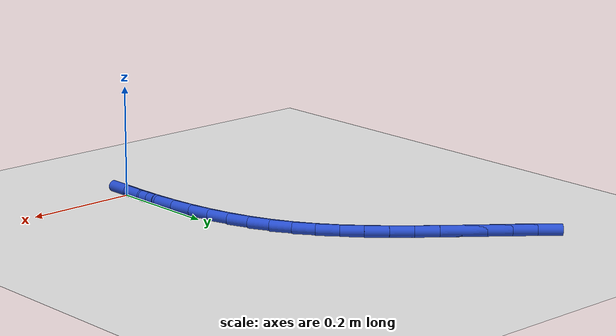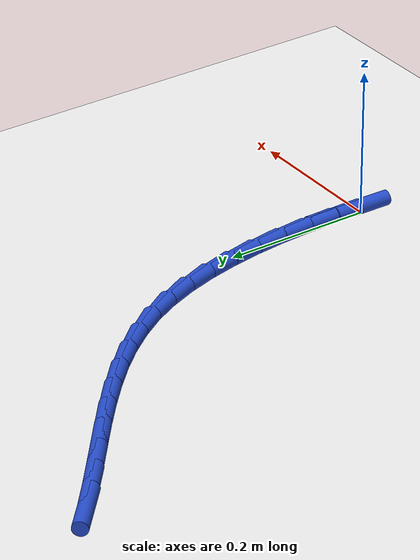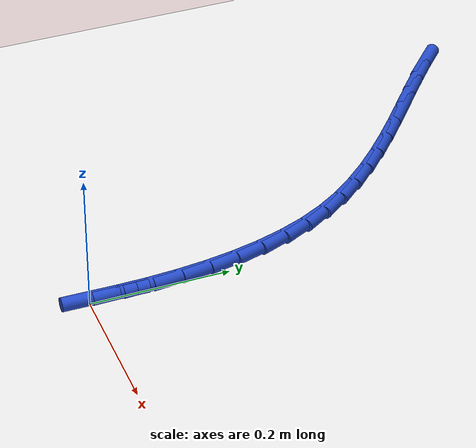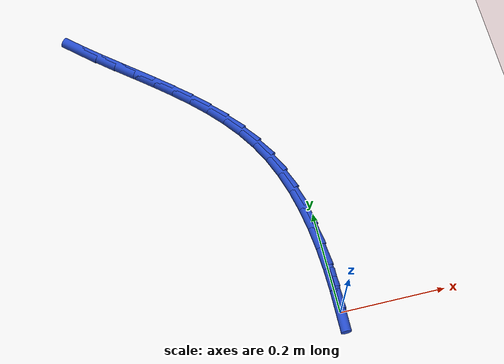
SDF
<sdf version="1.6">
 <world name="default">
  <model name="ground_plane">
   <static>1</static>
   <link name="link">
    <collision name="collision">
     <geometry><plane><normal>0 0 1</normal><size>100 100</size></plane></geometry>
     <surface><friction><ode><mu>100</mu><mu2>50</mu2></ode></friction></surface>
    </collision>
    <visual name="visual">
     <cast_shadows>0</cast_shadows>
     <geometry><plane><normal>0 0 1</normal><size>100 100</size></plane></geometry>
     <material>
      <script><uri>file://media/materials/scripts/gazebo.material</uri><name>Gazebo/WhiteGlow</name></script>
     </material>
    </visual>
   </link>
  </model>
  <model name="line">
   <link name="link_0">
    <pose>2.6020852139652106e-18 0.0 0.01 0 1.57 1.5603672017966557</pose>
    <collision name="collision">
     <geometry><cylinder><radius>0.01</radius><length>0.08</length></cylinder></geometry>
    </collision>
    <visual name="visual">
     <material>
      <script><name>Gazebo/Blue</name><uri>file://media/materials/scripts/gazebo.material</uri></script>
     </material>
     <geometry><cylinder><radius>0.01</radius><length>0.08</length></cylinder></geometry>
    </visual>
   </link>
   <link name="link_1">
    <pose>0.00045002174110240323 0.043148914724343616 0.01 0 1.57 -1.5474597674245667</pose>
    <collision name="collision">
     <geometry><cylinder><radius>0.01</radius><length>0.08</length></cylinder></geometry>
    </collision>
    <visual name="visual">
     <material>
      <script><name>Gazebo/Blue</name><uri>file://media/materials/scripts/gazebo.material</uri></script>
     </material>
     <geometry><cylinder><radius>0.01</radius><length>0.08</length></cylinder></geometry>
    </visual>
   </link>
   <link name="link_2">
    <pose>-0.0005565952846127219 0.08627585002966279 0.01 0 1.57 -1.5074508269520739</pose>
    <collision name="collision">
     <geometry><cylinder><radius>0.01</radius><length>0.08</length></cylinder></geometry>
    </collision>
    <visual name="visual">
     <material>
      <script><name>Gazebo/Blue</name><uri>file://media/materials/scripts/gazebo.material</uri></script>
     </material>
     <geometry><cylinder><radius>0.01</radius><length>0.08</length></cylinder></geometry>
    </visual>
   </link>
   <link name="link_3">
    <pose>-0.0032737772847034525 0.1291130944323196 0.01 0 1.57 -1.4605149708257072</pose>
    <collision name="collision">
     <geometry><cylinder><radius>0.01</radius><length>0.08</length></cylinder></geometry>
    </collision>
    <visual name="visual">
     <material>
      <script><name>Gazebo/Blue</name><uri>file://media/materials/scripts/gazebo.material</uri></script>
     </material>
     <geometry><cylinder><radius>0.01</radius><length>0.08</length></cylinder></geometry>
    </visual>
   </link>
   <link name="link_4">
    <pose>-0.007955450466727878 0.17139293644867626 0.01 0 1.57 -1.4058596160627999</pose>
    <collision name="collision">
     <geometry><cylinder><radius>0.01</radius><length>0.08</length></cylinder></geometry>
    </collision>
    <visual name="visual">
     <material>
      <script><name>Gazebo/Blue</name><uri>file://media/materials/scripts/gazebo.material</uri></script>
     </material>
     <geometry><cylinder><radius>0.01</radius><length>0.08</length></cylinder></geometry>
    </visual>
   </link>
   <link name="link_5">
    <pose>-0.014855541038244081 0.21284766459509488 0.01 0 1.57 -1.3426300670088354</pose>
    <collision name="collision">
     <geometry><cylinder><radius>0.01</radius><length>0.08</length></cylinder></geometry>
    </collision>
    <visual name="visual">
     <material>
      <script><name>Gazebo/Blue</name><uri>file://media/materials/scripts/gazebo.material</uri></script>
     </material>
     <geometry><cylinder><radius>0.01</radius><length>0.08</length></cylinder></geometry>
    </visual>
   </link>
   <link name="link_6">
    <pose>-0.02422797520681013 0.25320956738793743 0.01 0 1.57 -1.2699969691177238</pose>
    <collision name="collision">
     <geometry><cylinder><radius>0.01</radius><length>0.08</length></cylinder></geometry>
    </collision>
    <visual name="visual">
     <material>
      <script><name>Gazebo/Blue</name><uri>file://media/materials/scripts/gazebo.material</uri></script>
     </material>
     <geometry><cylinder><radius>0.01</radius><length>0.08</length></cylinder></geometry>
    </visual>
   </link>
   <link name="link_7">
    <pose>-0.036326679179984125 0.2922109333435662 0.01 0 1.57 -1.1873028857783643</pose>
    <collision name="collision">
     <geometry><cylinder><radius>0.01</radius><length>0.08</length></cylinder></geometry>
    </collision>
    <visual name="visual">
     <material>
      <script><name>Gazebo/Blue</name><uri>file://media/materials/scripts/gazebo.material</uri></script>
     </material>
     <geometry><cylinder><radius>0.01</radius><length>0.08</length></cylinder></geometry>
    </visual>
   </link>
   <link name="link_8">
    <pose>-0.051405579165324136 0.3295840509783432 0.01 0 1.57 -1.0942841583224854</pose>
    <collision name="collision">
     <geometry><cylinder><radius>0.01</radius><length>0.08</length></cylinder></geometry>
    </collision>
    <visual name="visual">
     <material>
      <script><name>Gazebo/Blue</name><uri>file://media/materials/scripts/gazebo.material</uri></script>
     </material>
     <geometry><cylinder><radius>0.01</radius><length>0.08</length></cylinder></geometry>
    </visual>
   </link>
   <link name="link_9">
    <pose>-0.0697184450380698 0.3650613332019651 0.01 0 1.57 -0.996380245673062</pose>
    <collision name="collision">
     <geometry><cylinder><radius>0.01</radius><length>0.08</length></cylinder></geometry>
    </collision>
    <visual name="visual">
     <material>
      <script><name>Gazebo/Blue</name><uri>file://media/materials/scripts/gazebo.material</uri></script>
     </material>
     <geometry><cylinder><radius>0.01</radius><length>0.08</length></cylinder></geometry>
    </visual>
   </link>
   <link name="link_10">
    <pose>-0.0913610808833518 0.3985008860088433 0.01 0 1.57 -0.9093972416215466</pose>
    <collision name="collision">
     <geometry><cylinder><radius>0.01</radius><length>0.08</length></cylinder></geometry>
    </collision>
    <visual name="visual">
     <material>
      <script><name>Gazebo/Blue</name><uri>file://media/materials/scripts/gazebo.material</uri></script>
     </material>
     <geometry><cylinder><radius>0.01</radius><length>0.08</length></cylinder></geometry>
    </visual>
   </link>
   <link name="link_11">
    <pose>-0.11597412124693667 0.4301229929473489 0.01 0 1.57 -0.8368479725677014</pose>
    <collision name="collision">
     <geometry><cylinder><radius>0.01</radius><length>0.08</length></cylinder></geometry>
    </collision>
    <visual name="visual">
     <material>
      <script><name>Gazebo/Blue</name><uri>file://media/materials/scripts/gazebo.material</uri></script>
     </material>
     <geometry><cylinder><radius>0.01</radius><length>0.08</length></cylinder></geometry>
    </visual>
   </link>
   <link name="link_12">
    <pose>-0.14311671116471883 0.4602127786169489 0.01 0 1.57 -0.7787051415591466</pose>
    <collision name="collision">
     <geometry><cylinder><radius>0.01</radius><length>0.08</length></cylinder></geometry>
    </collision>
    <visual name="visual">
     <material>
      <script><name>Gazebo/Blue</name><uri>file://media/materials/scripts/gazebo.material</uri></script>
     </material>
     <geometry><cylinder><radius>0.01</radius><length>0.08</length></cylinder></geometry>
    </visual>
   </link>
   <link name="link_13">
    <pose>-0.1723479956725925 0.48905536761710977 0.01 0 1.57 -0.7344106457925842</pose>
    <collision name="collision">
     <geometry><cylinder><radius>0.01</radius><length>0.08</length></cylinder></geometry>
    </collision>
    <visual name="visual">
     <material>
      <script><name>Gazebo/Blue</name><uri>file://media/materials/scripts/gazebo.material</uri></script>
     </material>
     <geometry><cylinder><radius>0.01</radius><length>0.08</length></cylinder></geometry>
    </visual>
   </link>
   <link name="link_14">
    <pose>-0.20322711980645197 0.5169358845472981 0.01 0 1.57 -0.7032329872500405</pose>
    <collision name="collision">
     <geometry><cylinder><radius>0.01</radius><length>0.08</length></cylinder></geometry>
    </collision>
    <visual name="visual">
     <material>
      <script><name>Gazebo/Blue</name><uri>file://media/materials/scripts/gazebo.material</uri></script>
     </material>
     <geometry><cylinder><radius>0.01</radius><length>0.08</length></cylinder></geometry>
    </visual>
   </link>
   <link name="link_15">
    <pose>-0.23531322860219148 0.5441394540069803 0.01 0 1.57 -0.6845001135944201</pose>
    <collision name="collision">
     <geometry><cylinder><radius>0.01</radius><length>0.08</length></cylinder></geometry>
    </collision>
    <visual name="visual">
     <material>
      <script><name>Gazebo/Blue</name><uri>file://media/materials/scripts/gazebo.material</uri></script>
     </material>
     <geometry><cylinder><radius>0.01</radius><length>0.08</length></cylinder></geometry>
    </visual>
   </link>
   <link name="link_16">
    <pose>-0.26816546709570555 0.5709512005956237 0.01 0 1.57 -0.6777301723443366</pose>
    <collision name="collision">
     <geometry><cylinder><radius>0.01</radius><length>0.08</length></cylinder></geometry>
    </collision>
    <visual name="visual">
     <material>
      <script><name>Gazebo/Blue</name><uri>file://media/materials/scripts/gazebo.material</uri></script>
     </material>
     <geometry><cylinder><radius>0.01</radius><length>0.08</length></cylinder></geometry>
    </visual>
   </link>
   <link name="link_17">
    <pose>-0.30134298032288837 0.5976562489126944 0.01 0 1.57 -0.6826927351109306</pose>
    <collision name="collision">
     <geometry><cylinder><radius>0.01</radius><length>0.08</length></cylinder></geometry>
    </collision>
    <visual name="visual">
     <material>
      <script><name>Gazebo/Blue</name><uri>file://media/materials/scripts/gazebo.material</uri></script>
     </material>
     <geometry><cylinder><radius>0.01</radius><length>0.08</length></cylinder></geometry>
    </visual>
   </link>
   <link name="link_18">
    <pose>-0.3344049133196341 0.6245397235576591 0.01 0 1.57 -0.6994242389969801</pose>
    <collision name="collision">
     <geometry><cylinder><radius>0.01</radius><length>0.08</length></cylinder></geometry>
    </collision>
    <visual name="visual">
     <material>
      <script><name>Gazebo/Blue</name><uri>file://media/materials/scripts/gazebo.material</uri></script>
     </material>
     <geometry><cylinder><radius>0.01</radius><length>0.08</length></cylinder></geometry>
    </visual>
   </link>
   <link name="link_19">
    <pose>-0.3669104111218373 0.6518867491299845 0.01 0 1.57 -0.7282075311288307</pose>
    <collision name="collision">
     <geometry><cylinder><radius>0.01</radius><length>0.08</length></cylinder></geometry>
    </collision>
    <visual name="visual">
     <material>
      <script><name>Gazebo/Blue</name><uri>file://media/materials/scripts/gazebo.material</uri></script>
     </material>
     <geometry><cylinder><radius>0.01</radius><length>0.08</length></cylinder></geometry>
    </visual>
   </link>
   <link name="link_171">
    <pose>0.0005069832190844744 0.043176557751093476 0.01 0 1.57 1.5590547719555912</pose>
    <collision name="collision">
     <geometry><cylinder><radius>0.01</radius><length>0.08</length></cylinder></geometry>
    </collision>
    <visual name="visual">
     <material>
      <script><name>Gazebo/Blue</name><uri>file://media/materials/scripts/gazebo.material</uri></script>
     </material>
     <geometry><cylinder><radius>0.01</radius><length>0.08</length></cylinder></geometry>
    </visual>
   </link>
  </model>
 </world>
</sdf>
